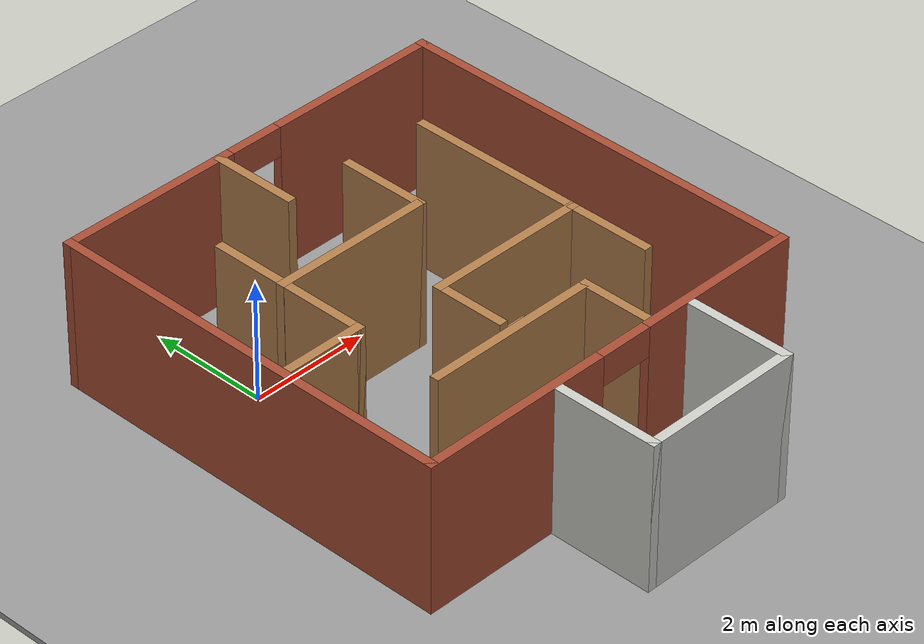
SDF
<sdf version="1.7">
 <world name="default">
  <light name="sun" type="directional">
   <pose>0 0 10 0 -0 0</pose>
   <diffuse>0.8 0.8 0.8 1</diffuse>
   <specular>0.2 0.2 0.2 1</specular>
   <attenuation>
    <range>1000</range>
    <constant>0.9</constant>
    <linear>0.01</linear>
    <quadratic>0.001</quadratic>
   </attenuation>
   <direction>-0.5 0.1 -0.9</direction>
   <spot><inner_angle>0</inner_angle><outer_angle>0</outer_angle><falloff>0</falloff></spot>
  </light>
  <model name="ground_plane">
   <static>1</static>
   <link name="link">
    <collision name="collision">
     <geometry><plane><normal>0 0 1</normal><size>100 100</size></plane></geometry>
     <surface><friction><ode><mu>100</mu><mu2>50</mu2></ode></friction></surface>
    </collision>
    <visual name="visual">
     <cast_shadows>0</cast_shadows>
     <geometry><plane><normal>0 0 1</normal><size>100 100</size></plane></geometry>
     <material>
      <script><uri>file://media/materials/scripts/gazebo.material</uri><name>Gazebo/Grey</name></script>
     </material>
    </visual>
   </link>
  </model>
  <gravity>0 0 -9.8</gravity>
  <magnetic_field>6e-06 2.3e-05 -4.2e-05</magnetic_field>
  <atmosphere type="adiabatic"/>
  <physics type="ode">
   <max_step_size>0.001</max_step_size>
   <real_time_factor>1</real_time_factor>
   <real_time_update_rate>1000</real_time_update_rate>
  </physics>
  <scene><ambient>0.4 0.4 0.4 1</ambient><background>0.7 0.7 0.7 1</background><shadows>1</shadows></scene>
  <audio><device>default</device></audio>
  <spherical_coordinates>
   <surface_model>EARTH_WGS84</surface_model>
   <latitude_deg>0</latitude_deg>
   <longitude_deg>0</longitude_deg>
   <elevation>0</elevation>
   <heading_deg>0</heading_deg>
  </spherical_coordinates>
  <model name="5x5maze">
   <pose>1.85847 -2.31338 0 0 -0 0</pose>
   <link name="Wall_1">
    <pose>0 -2.55493 0 0 -0 0</pose>
    <visual name="Wall_1_Visual_0">
     <pose>-1.86853 0 1.25 0 -0 0</pose>
     <geometry><box><size>3.26293 0.15 2.5</size></box></geometry>
     <material>
      <script><uri>file://media/materials/scripts/gazebo.material</uri><name>Gazebo/Bricks</name></script>
      <ambient>1 1 1 1</ambient>
     </material>
     <meta><layer>0</layer></meta>
    </visual>
    <collision name="Wall_1_Collision_0">
     <geometry><box><size>3.26293 0.15 2.5</size></box></geometry>
     <pose>-1.86853 0 1.25 0 -0 0</pose>
    </collision>
    <visual name="Wall_1_Visual_1">
     <pose>2.08147 0 1.25 0 -0 0</pose>
     <geometry><box><size>2.83707 0.15 2.5</size></box></geometry>
     <material>
      <script><uri>file://media/materials/scripts/gazebo.material</uri><name>Gazebo/Bricks</name></script>
      <ambient>1 1 1 1</ambient>
     </material>
     <meta><layer>0</layer></meta>
    </visual>
    <collision name="Wall_1_Collision_1">
     <geometry><box><size>2.83707 0.15 2.5</size></box></geometry>
     <pose>2.08147 0 1.25 0 -0 0</pose>
    </collision>
    <visual name="Wall_1_Visual_2">
     <pose>0.212933 0 2.25 0 -0 0</pose>
     <geometry><box><size>0.9 0.15 0.5</size></box></geometry>
     <material>
      <script><uri>file://media/materials/scripts/gazebo.material</uri><name>Gazebo/Bricks</name></script>
      <ambient>1 1 1 1</ambient>
     </material>
     <meta><layer>0</layer></meta>
    </visual>
    <collision name="Wall_1_Collision_2">
     <geometry><box><size>0.9 0.15 0.5</size></box></geometry>
     <pose>0.212933 0 2.25 0 -0 0</pose>
    </collision>
   </link>
   <link name="Wall_10">
    <collision name="Wall_10_Collision">
     <geometry><box><size>2.75 0.15 2.5</size></box></geometry>
     <pose>0 0 1.25 0 -0 0</pose>
    </collision>
    <visual name="Wall_10_Visual">
     <pose>0 0 1.25 0 -0 0</pose>
     <geometry><box><size>2.75 0.15 2.5</size></box></geometry>
     <material>
      <script><uri>file://media/materials/scripts/gazebo.material</uri><name>Gazebo/Wood</name></script>
      <ambient>1 1 1 1</ambient>
     </material>
     <meta><layer>0</layer></meta>
    </visual>
    <pose>-0.743285 1.55524 0 0 -0 0</pose>
   </link>
   <link name="Wall_11">
    <collision name="Wall_11_Collision">
     <geometry><box><size>1.5 0.15 2.5</size></box></geometry>
     <pose>0 0 1.25 0 -0 0</pose>
    </collision>
    <visual name="Wall_11_Visual">
     <pose>0 0 1.25 0 -0 0</pose>
     <geometry><box><size>1.5 0.15 2.5</size></box></geometry>
     <material>
      <script><uri>file://media/materials/scripts/gazebo.material</uri><name>Gazebo/Wood</name></script>
      <ambient>1 1 1 1</ambient>
     </material>
     <meta><layer>0</layer></meta>
    </visual>
    <pose>0.556715 2.23024 0 0 -0 1.5708</pose>
   </link>
   <link name="Wall_13">
    <collision name="Wall_13_Collision">
     <geometry><box><size>1.5 0.15 2.5</size></box></geometry>
     <pose>0 0 1.25 0 -0 0</pose>
    </collision>
    <visual name="Wall_13_Visual">
     <pose>0 0 1.25 0 -0 0</pose>
     <geometry><box><size>1.5 0.15 2.5</size></box></geometry>
     <material>
      <script><uri>file://media/materials/scripts/gazebo.material</uri><name>Gazebo/Wood</name></script>
      <ambient>1 1 1 1</ambient>
     </material>
     <meta><layer>0</layer></meta>
    </visual>
    <pose>-0.62659 3.5912 0 0 -0 -1.5708</pose>
   </link>
   <link name="Wall_16">
    <collision name="Wall_16_Collision">
     <geometry><box><size>1.25 0.15 2.5</size></box></geometry>
     <pose>0 0 1.25 0 -0 0</pose>
    </collision>
    <visual name="Wall_16_Visual">
     <pose>0 0 1.25 0 -0 0</pose>
     <geometry><box><size>1.25 0.15 2.5</size></box></geometry>
     <material>
      <script><uri>file://media/materials/scripts/gazebo.material</uri><name>Gazebo/Wood</name></script>
      <ambient>1 1 1 1</ambient>
     </material>
     <meta><layer>0</layer></meta>
    </visual>
    <pose>0.790105 -1.89999 0 0 -0 1.5708</pose>
   </link>
   <link name="Wall_17">
    <collision name="Wall_17_Collision">
     <geometry><box><size>3 0.15 2.5</size></box></geometry>
     <pose>0 0 1.25 0 -0 0</pose>
    </collision>
    <visual name="Wall_17_Visual">
     <pose>0 0 1.25 0 -0 0</pose>
     <geometry><box><size>3 0.15 2.5</size></box></geometry>
     <material>
      <script><uri>file://media/materials/scripts/gazebo.material</uri><name>Gazebo/Wood</name></script>
      <ambient>1 1 1 1</ambient>
     </material>
     <meta><layer>0</layer></meta>
    </visual>
    <pose>-0.634895 -1.34999 0 0 -0 3.14159</pose>
   </link>
   <link name="Wall_19">
    <collision name="Wall_19_Collision">
     <geometry><box><size>1.25 0.15 2.5</size></box></geometry>
     <pose>0 0 1.25 0 -0 0</pose>
    </collision>
    <visual name="Wall_19_Visual">
     <pose>0 0 1.25 0 -0 0</pose>
     <geometry><box><size>1.25 0.15 2.5</size></box></geometry>
     <material>
      <script><uri>file://media/materials/scripts/gazebo.material</uri><name>Gazebo/Wood</name></script>
      <ambient>1 1 1 1</ambient>
     </material>
     <meta><layer>0</layer></meta>
    </visual>
    <pose>-0.62659 -0.553252 0 0 -0 1.5708</pose>
   </link>
   <link name="Wall_2">
    <collision name="Wall_2_Collision">
     <geometry><box><size>7 0.15 2.5</size></box></geometry>
     <pose>0 0 1.25 0 -0 0</pose>
    </collision>
    <visual name="Wall_2_Visual">
     <pose>0 0 1.25 0 -0 0</pose>
     <geometry><box><size>7 0.15 2.5</size></box></geometry>
     <material>
      <script><uri>file://media/materials/scripts/gazebo.material</uri><name>Gazebo/Bricks</name></script>
      <ambient>1 1 1 1</ambient>
     </material>
     <meta><layer>0</layer></meta>
    </visual>
    <pose>3.425 0.870073 0 0 -0 1.5708</pose>
   </link>
   <link name="Wall_20">
    <collision name="Wall_20_Collision">
     <geometry><box><size>2.75 0.15 2.5</size></box></geometry>
     <pose>0 0 1.25 0 -0 0</pose>
    </collision>
    <visual name="Wall_20_Visual">
     <pose>0 0 1.25 0 -0 0</pose>
     <geometry><box><size>2.75 0.15 2.5</size></box></geometry>
     <material>
      <script><uri>file://media/materials/scripts/gazebo.material</uri><name>Gazebo/Wood</name></script>
      <ambient>1 1 1 1</ambient>
     </material>
     <meta><layer>0</layer></meta>
    </visual>
    <pose>0.67341 -0.003252 0 0 -0 0</pose>
   </link>
   <link name="Wall_21">
    <collision name="Wall_21_Collision">
     <geometry><box><size>1.5 0.15 2.5</size></box></geometry>
     <pose>0 0 1.25 0 -0 0</pose>
    </collision>
    <visual name="Wall_21_Visual">
     <pose>0 0 1.25 0 -0 0</pose>
     <geometry><box><size>1.5 0.15 2.5</size></box></geometry>
     <material>
      <script><uri>file://media/materials/scripts/gazebo.material</uri><name>Gazebo/Wood</name></script>
      <ambient>1 1 1 1</ambient>
     </material>
     <meta><layer>0</layer></meta>
    </visual>
    <pose>1.97341 -0.678252 0 0 -0 -1.5708</pose>
   </link>
   <link name="Wall_23">
    <collision name="Wall_23_Collision">
     <geometry><box><size>3 0.15 2.5</size></box></geometry>
     <pose>0 0 1.25 0 -0 0</pose>
    </collision>
    <visual name="Wall_23_Visual">
     <pose>0 0 1.25 0 -0 0</pose>
     <geometry><box><size>3 0.15 2.5</size></box></geometry>
     <material>
      <script><uri>file://media/materials/scripts/gazebo.material</uri><name>Gazebo/Wood</name></script>
      <ambient>1 1 1 1</ambient>
     </material>
     <meta><layer>0</layer></meta>
    </visual>
    <pose>1.97341 1.42175 0 0 -0 1.5708</pose>
   </link>
   <link name="Wall_26">
    <collision name="Wall_26_Collision">
     <geometry><box><size>1.75 0.15 2.5</size></box></geometry>
     <pose>0 0 1.25 0 -0 0</pose>
    </collision>
    <visual name="Wall_26_Visual">
     <pose>0 0 1.25 0 -0 0</pose>
     <geometry><box><size>1.75 0.15 2.5</size></box></geometry>
     <material>
      <script><uri>file://media/materials/scripts/gazebo.material</uri><name>Gazebo/CeilingTiled</name></script>
      <ambient>1 1 1 1</ambient>
     </material>
     <meta><layer>0</layer></meta>
    </visual>
    <pose>-1.118 -3.49507 0 0 -0 -1.5708</pose>
   </link>
   <link name="Wall_27">
    <collision name="Wall_27_Collision">
     <geometry><box><size>2.75 0.15 2.5</size></box></geometry>
     <pose>0 0 1.25 0 -0 0</pose>
    </collision>
    <visual name="Wall_27_Visual">
     <pose>0 0 1.25 0 -0 0</pose>
     <geometry><box><size>2.75 0.15 2.5</size></box></geometry>
     <material>
      <script><uri>file://media/materials/scripts/gazebo.material</uri><name>Gazebo/CeilingTiled</name></script>
      <ambient>1 1 1 1</ambient>
     </material>
     <meta><layer>0</layer></meta>
    </visual>
    <pose>0.182002 -4.29507 0 0 -0 0</pose>
   </link>
   <link name="Wall_28">
    <collision name="Wall_28_Collision">
     <geometry><box><size>1.75 0.15 2.5</size></box></geometry>
     <pose>0 0 1.25 0 -0 0</pose>
    </collision>
    <visual name="Wall_28_Visual">
     <pose>0 0 1.25 0 -0 0</pose>
     <geometry><box><size>1.75 0.15 2.5</size></box></geometry>
     <material>
      <script><uri>file://media/materials/scripts/gazebo.material</uri><name>Gazebo/CeilingTiled</name></script>
      <ambient>1 1 1 1</ambient>
     </material>
     <meta><layer>0</layer></meta>
    </visual>
    <pose>1.482 -3.49507 0 0 -0 1.5708</pose>
   </link>
   <link name="Wall_3">
    <pose>0 4.29507 0 0 -0 3.14159</pose>
    <visual name="Wall_3_Visual_0">
     <pose>-1.99321 0 1.25 0 -0 0</pose>
     <geometry><box><size>3.01357 0.15 2.5</size></box></geometry>
     <material>
      <script><uri>file://media/materials/scripts/gazebo.material</uri><name>Gazebo/Bricks</name></script>
      <ambient>1 1 1 1</ambient>
     </material>
     <meta><layer>0</layer></meta>
    </visual>
    <collision name="Wall_3_Collision_0">
     <geometry><box><size>3.01357 0.15 2.5</size></box></geometry>
     <pose>-1.99321 0 1.25 0 -0 0</pose>
    </collision>
    <visual name="Wall_3_Visual_1">
     <pose>1.95679 0 1.25 0 -0 0</pose>
     <geometry><box><size>3.08643 0.15 2.5</size></box></geometry>
     <material>
      <script><uri>file://media/materials/scripts/gazebo.material</uri><name>Gazebo/Bricks</name></script>
      <ambient>1 1 1 1</ambient>
     </material>
     <meta><layer>0</layer></meta>
    </visual>
    <collision name="Wall_3_Collision_1">
     <geometry><box><size>3.08643 0.15 2.5</size></box></geometry>
     <pose>1.95679 0 1.25 0 -0 0</pose>
    </collision>
    <visual name="Wall_3_Visual_2">
     <pose>-0.036426 0 2.25 0 -0 0</pose>
     <geometry><box><size>0.9 0.15 0.5</size></box></geometry>
     <material>
      <script><uri>file://media/materials/scripts/gazebo.material</uri><name>Gazebo/Bricks</name></script>
      <ambient>1 1 1 1</ambient>
     </material>
     <meta><layer>0</layer></meta>
    </visual>
    <collision name="Wall_3_Collision_2">
     <geometry><box><size>0.9 0.15 0.5</size></box></geometry>
     <pose>-0.036426 0 2.25 0 -0 0</pose>
    </collision>
   </link>
   <link name="Wall_4">
    <collision name="Wall_4_Collision">
     <geometry><box><size>7 0.15 2.5</size></box></geometry>
     <pose>0 0 1.25 0 -0 0</pose>
    </collision>
    <visual name="Wall_4_Visual">
     <pose>0 0 1.25 0 -0 0</pose>
     <geometry><box><size>7 0.15 2.5</size></box></geometry>
     <material>
      <script><uri>file://media/materials/scripts/gazebo.material</uri><name>Gazebo/Bricks</name></script>
      <ambient>1 1 1 1</ambient>
     </material>
     <meta><layer>0</layer></meta>
    </visual>
    <pose>-3.425 0.870073 0 0 -0 -1.5708</pose>
   </link>
   <link name="Wall_7">
    <collision name="Wall_7_Collision">
     <geometry><box><size>1.5 0.15 2.5</size></box></geometry>
     <pose>0 0 1.25 0 -0 0</pose>
    </collision>
    <visual name="Wall_7_Visual">
     <pose>0 0 1.25 0 -0 0</pose>
     <geometry><box><size>1.5 0.15 2.5</size></box></geometry>
     <material>
      <script><uri>file://media/materials/scripts/gazebo.material</uri><name>Gazebo/Wood</name></script>
      <ambient>1 1 1 1</ambient>
     </material>
     <meta><layer>0</layer></meta>
    </visual>
    <pose>-2.71502 0.156032 0 0 -0 0</pose>
   </link>
   <link name="Wall_8">
    <collision name="Wall_8_Collision">
     <geometry><box><size>2.75 0.15 2.5</size></box></geometry>
     <pose>0 0 1.25 0 -0 0</pose>
    </collision>
    <visual name="Wall_8_Visual">
     <pose>0 0 1.25 0 -0 0</pose>
     <geometry><box><size>2.75 0.15 2.5</size></box></geometry>
     <material>
      <script><uri>file://media/materials/scripts/gazebo.material</uri><name>Gazebo/Wood</name></script>
      <ambient>1 1 1 1</ambient>
     </material>
     <meta><layer>0</layer></meta>
    </visual>
    <pose>-2.04002 1.45603 0 0 -0 1.5708</pose>
   </link>
   <static>1</static>
  </model>
  <model name="bookshelf">
   <static>1</static>
   <link name="link">
    <inertial><mass>1</mass></inertial>
    <collision name="back">
     <pose>0 0.005 0.6 0 -0 0</pose>
     <geometry><box><size>0.9 0.01 1.2</size></box></geometry>
    </collision>
    <visual name="visual1">
     <pose>0 0.005 0.6 0 -0 0</pose>
     <geometry><box><size>0.9 0.01 1.2</size></box></geometry>
     <material>
      <script><uri>file://media/materials/scripts/gazebo.material</uri><name>Gazebo/Wood</name></script>
     </material>
    </visual>
    <collision name="left_side">
     <pose>0.45 -0.195 0.6 0 -0 0</pose>
     <geometry><box><size>0.02 0.4 1.2</size></box></geometry>
    </collision>
    <visual name="visual2">
     <pose>0.45 -0.195 0.6 0 -0 0</pose>
     <geometry><box><size>0.02 0.4 1.2</size></box></geometry>
     <material>
      <script><uri>file://media/materials/scripts/gazebo.material</uri><name>Gazebo/Wood</name></script>
     </material>
    </visual>
    <collision name="right_side">
     <pose>-0.45 -0.195 0.6 0 -0 0</pose>
     <geometry><box><size>0.02 0.4 1.2</size></box></geometry>
    </collision>
    <visual name="visual3">
     <pose>-0.45 -0.195 0.6 0 -0 0</pose>
     <geometry><box><size>0.02 0.4 1.2</size></box></geometry>
     <material>
      <script><uri>file://media/materials/scripts/gazebo.material</uri><name>Gazebo/Wood</name></script>
     </material>
    </visual>
    <collision name="bottom">
     <pose>0 -0.195 0.03 0 -0 0</pose>
     <geometry><box><size>0.88 0.4 0.06</size></box></geometry>
    </collision>
    <visual name="visual4">
     <pose>0 -0.195 0.03 0 -0 0</pose>
     <geometry><box><size>0.88 0.4 0.06</size></box></geometry>
     <material>
      <script><uri>file://media/materials/scripts/gazebo.material</uri><name>Gazebo/Wood</name></script>
     </material>
    </visual>
    <collision name="top">
     <pose>0 -0.195 1.19 0 -0 0</pose>
     <geometry><box><size>0.88 0.4 0.02</size></box></geometry>
    </collision>
    <visual name="visual5">
     <pose>0 -0.195 1.19 0 -0 0</pose>
     <geometry><box><size>0.88 0.4 0.02</size></box></geometry>
     <material>
      <script><uri>file://media/materials/scripts/gazebo.material</uri><name>Gazebo/Wood</name></script>
     </material>
    </visual>
    <collision name="low_shelf">
     <pose>0 -0.195 0.43 0 -0 0</pose>
     <geometry><box><size>0.88 0.4 0.02</size></box></geometry>
    </collision>
    <visual name="visual6">
     <pose>0 -0.195 0.43 0 -0 0</pose>
     <geometry><box><size>0.88 0.4 0.02</size></box></geometry>
     <material>
      <script><uri>file://media/materials/scripts/gazebo.material</uri><name>Gazebo/Wood</name></script>
     </material>
    </visual>
    <collision name="high_shelf">
     <pose>0 -0.195 0.8 0 -0 0</pose>
     <geometry><box><size>0.88 0.4 0.02</size></box></geometry>
    </collision>
    <visual name="visual7">
     <pose>0 -0.195 0.8 0 -0 0</pose>
     <geometry><box><size>0.88 0.4 0.02</size></box></geometry>
     <material>
      <script><uri>file://media/materials/scripts/gazebo.material</uri><name>Gazebo/Wood</name></script>
     </material>
    </visual>
   </link>
   <pose>2.35448 -2.38021 0 0 -0 0</pose>
  </model>
  <model name="ground_plane_0">
   <static>1</static>
   <link name="link">
    <collision name="collision">
     <geometry><plane><normal>0 0 1</normal><size>100 100</size></plane></geometry>
     <surface><friction><ode><mu>100</mu><mu2>50</mu2></ode></friction></surface>
    </collision>
    <visual name="visual">
     <cast_shadows>0</cast_shadows>
     <geometry><plane><normal>0 0 1</normal><size>100 100</size></plane></geometry>
     <material>
      <script><uri>file://media/materials/scripts/gazebo.material</uri><name>Gazebo/Grey</name></script>
     </material>
    </visual>
   </link>
   <pose>-1.12376 0.958747 0 0 -0 0</pose>
  </model>
  <model name="beer">
   <link name="link">
    <pose>0 0 0.115 0 -0 0</pose>
    <inertial>
     <mass>0.39</mass>
     <inertia><ixx>0.00058</ixx><ixy>0</ixy><ixz>0</ixz><iyy>0.00058</iyy><iyz>0</iyz><izz>0.00019</izz></inertia>
    </inertial>
    <collision name="collision">
     <geometry><cylinder><radius>0.055</radius><length>0.23</length></cylinder></geometry>
    </collision>
    <visual name="visual">
     <geometry><cylinder><radius>0.055</radius><length>0.23</length></cylinder></geometry>
     <material>
      <script>
       <uri>model://beer/materials/scripts</uri>
       <uri>model://beer/materials/textures</uri>
       <name>Beer/Diffuse</name>
      </script>
     </material>
    </visual>
   </link>
   <pose>1.98638 3.97285 -0 -3e-06 -1e-06 1e-05</pose>
  </model>
 </world>
</sdf>
